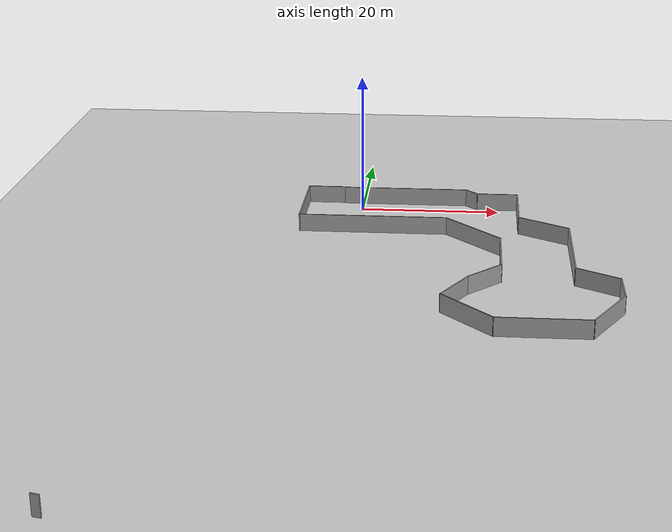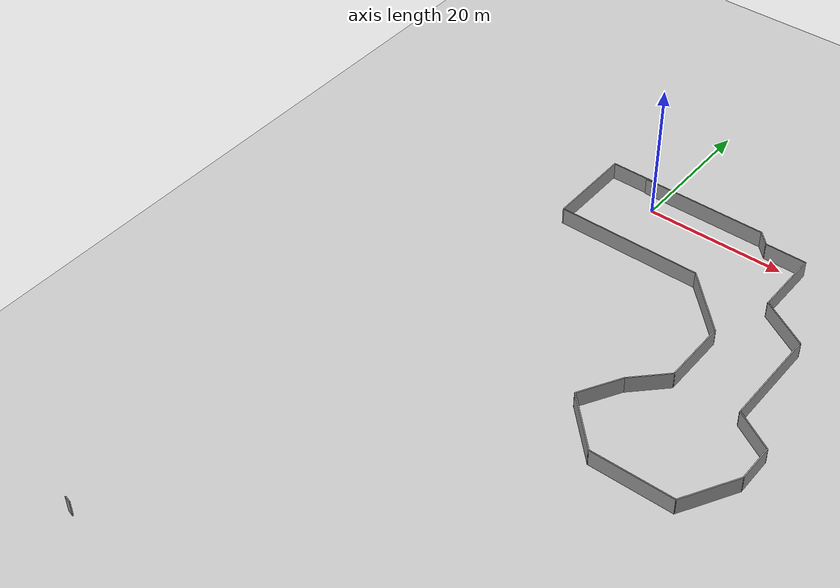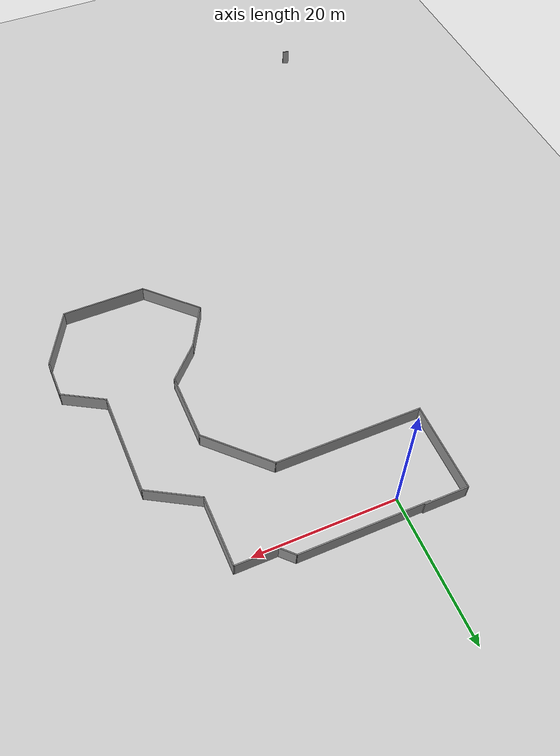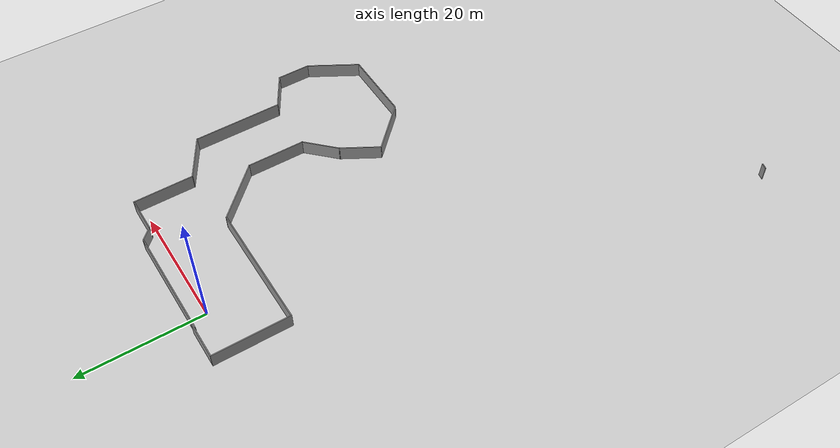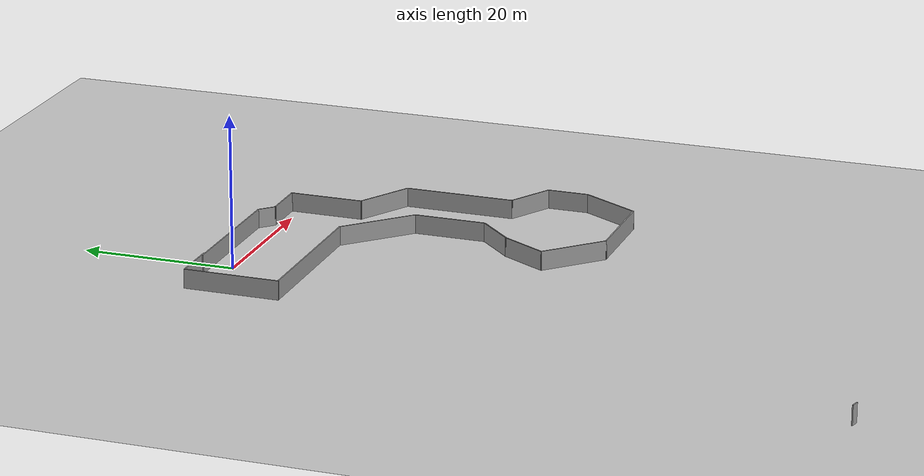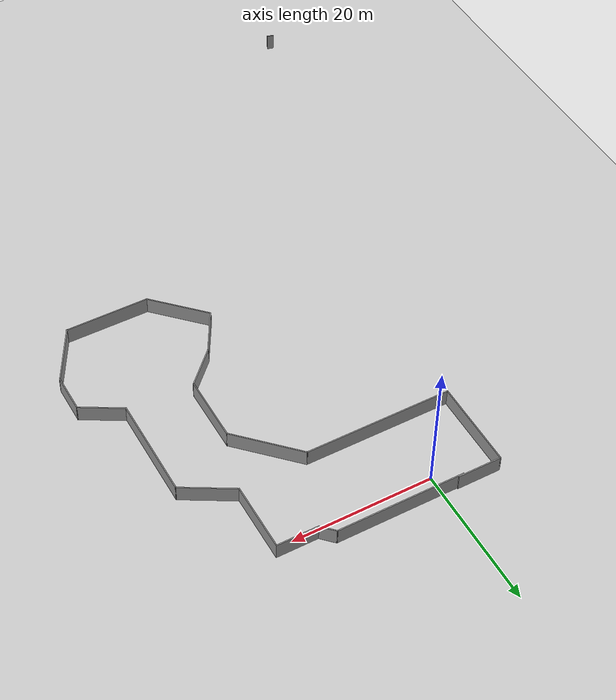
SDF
<sdf version="1.7">
 <world name="default">
  <light name="sun" type="directional">
   <pose>0 0 10 0 -0 0</pose>
   <diffuse>0.8 0.8 0.8 1</diffuse>
   <specular>0.2 0.2 0.2 1</specular>
   <attenuation>
    <range>1000</range>
    <constant>0.9</constant>
    <linear>0.01</linear>
    <quadratic>0.001</quadratic>
   </attenuation>
   <direction>-0.5 0.1 -0.9</direction>
   <spot><inner_angle>0</inner_angle><outer_angle>0</outer_angle><falloff>0</falloff></spot>
  </light>
  <model name="ground_plane">
   <static>1</static>
   <link name="link">
    <collision name="collision">
     <geometry><plane><normal>0 0 1</normal><size>100 100</size></plane></geometry>
     <surface>
      <contact><collide_bitmask>65535</collide_bitmask></contact>
      <friction><ode><mu>100</mu><mu2>50</mu2></ode></friction>
     </surface>
    </collision>
    <visual name="visual">
     <cast_shadows>0</cast_shadows>
     <geometry><plane><normal>0 0 1</normal><size>100 100</size></plane></geometry>
     <material>
      <script><uri>file://media/materials/scripts/gazebo.material</uri><name>Gazebo/Grey</name></script>
     </material>
    </visual>
   </link>
  </model>
  <gravity>0 0 -9.8</gravity>
  <magnetic_field>6e-06 2.3e-05 -4.2e-05</magnetic_field>
  <atmosphere type="adiabatic"/>
  <physics type="ode">
   <max_step_size>0.001</max_step_size>
   <real_time_factor>1</real_time_factor>
   <real_time_update_rate>1000</real_time_update_rate>
  </physics>
  <scene><ambient>0.4 0.4 0.4 1</ambient><background>0.7 0.7 0.7 1</background><shadows>1</shadows></scene>
  <spherical_coordinates>
   <surface_model>EARTH_WGS84</surface_model>
   <latitude_deg>0</latitude_deg>
   <longitude_deg>0</longitude_deg>
   <elevation>0</elevation>
   <heading_deg>0</heading_deg>
  </spherical_coordinates>
  <audio><device>default</device></audio>
  <model name="ppew">
   <pose>5.8394 -40.9398 0 0 -0 0</pose>
   <link name="Wall_0">
    <collision name="Wall_0_Collision">
     <geometry><box><size>1 0.15 2.5</size></box></geometry>
     <pose>0 0 1.25 0 -0 0</pose>
    </collision>
    <visual name="Wall_0_Visual">
     <pose>0 0 1.25 0 -0 0</pose>
     <geometry><box><size>1 0.15 2.5</size></box></geometry>
     <material>
      <script><uri>file://media/materials/scripts/gazebo.material</uri><name>Gazebo/Grey</name></script>
      <ambient>1 1 1 1</ambient>
     </material>
     <meta><layer>0</layer></meta>
    </visual>
    <pose>-28.802 -43.6963 0 0 -0 2.87979</pose>
   </link>
   <link name="Wall_12">
    <collision name="Wall_12_Collision">
     <geometry><box><size>14.5 0.15 2.5</size></box></geometry>
     <pose>0 0 1.25 0 -0 0</pose>
    </collision>
    <visual name="Wall_12_Visual">
     <pose>0 0 1.25 0 -0 0</pose>
     <geometry><box><size>14.5 0.15 2.5</size></box></geometry>
     <material>
      <script><uri>file://media/materials/scripts/gazebo.material</uri><name>Gazebo/Grey</name></script>
      <ambient>1 1 1 1</ambient>
     </material>
     <meta><layer>0</layer></meta>
    </visual>
    <pose>23.7026 21.3118 0 0 -0 -1.5708</pose>
   </link>
   <link name="Wall_13">
    <collision name="Wall_13_Collision">
     <geometry><box><size>6.5 0.15 2.5</size></box></geometry>
     <pose>0 0 1.25 0 -0 0</pose>
    </collision>
    <visual name="Wall_13_Visual">
     <pose>0 0 1.25 0 -0 0</pose>
     <geometry><box><size>6.5 0.15 2.5</size></box></geometry>
     <material>
      <script><uri>file://media/materials/scripts/gazebo.material</uri><name>Gazebo/Grey</name></script>
      <ambient>1 1 1 1</ambient>
     </material>
     <meta><layer>0</layer></meta>
    </visual>
    <pose>26.4523 12.5493 0 0 -0 -0.523599</pose>
   </link>
   <link name="Wall_14">
    <collision name="Wall_14_Collision">
     <geometry><box><size>5.5 0.15 2.5</size></box></geometry>
     <pose>0 0 1.25 0 -0 0</pose>
    </collision>
    <visual name="Wall_14_Visual">
     <pose>0 0 1.25 0 -0 0</pose>
     <geometry><box><size>5.5 0.15 2.5</size></box></geometry>
     <material>
      <script><uri>file://media/materials/scripts/gazebo.material</uri><name>Gazebo/Grey</name></script>
      <ambient>1 1 1 1</ambient>
     </material>
     <meta><layer>0</layer></meta>
    </visual>
    <pose>29.2019 8.28684 0 0 -0 -1.5708</pose>
   </link>
   <link name="Wall_15">
    <collision name="Wall_15_Collision">
     <geometry><box><size>8.75 0.15 2.5</size></box></geometry>
     <pose>0 0 1.25 0 -0 0</pose>
    </collision>
    <visual name="Wall_15_Visual">
     <pose>0 0 1.25 0 -0 0</pose>
     <geometry><box><size>8.75 0.15 2.5</size></box></geometry>
     <material>
      <script><uri>file://media/materials/scripts/gazebo.material</uri><name>Gazebo/Grey</name></script>
      <ambient>1 1 1 1</ambient>
     </material>
     <meta><layer>0</layer></meta>
    </visual>
    <pose>27.0519 1.88793 0 0 -0 -2.0944</pose>
   </link>
   <link name="Wall_16">
    <collision name="Wall_16_Collision">
     <geometry><box><size>12 0.15 2.5</size></box></geometry>
     <pose>0 0 1.25 0 -0 0</pose>
    </collision>
    <visual name="Wall_16_Visual">
     <pose>0 0 1.25 0 -0 0</pose>
     <geometry><box><size>12 0.15 2.5</size></box></geometry>
     <material>
      <script><uri>file://media/materials/scripts/gazebo.material</uri><name>Gazebo/Grey</name></script>
      <ambient>1 1 1 1</ambient>
     </material>
     <meta><layer>0</layer></meta>
    </visual>
    <pose>18.9769 -1.83598 0 0 -0 3.14159</pose>
   </link>
   <link name="Wall_17">
    <collision name="Wall_17_Collision">
     <geometry><box><size>9.25 0.15 2.5</size></box></geometry>
     <pose>0 0 1.25 0 -0 0</pose>
    </collision>
    <visual name="Wall_17_Visual">
     <pose>0 0 1.25 0 -0 0</pose>
     <geometry><box><size>9.25 0.15 2.5</size></box></geometry>
     <material>
      <script><uri>file://media/materials/scripts/gazebo.material</uri><name>Gazebo/Grey</name></script>
      <ambient>1 1 1 1</ambient>
     </material>
     <meta><layer>0</layer></meta>
    </visual>
    <pose>9.83455 1.38136 0 0 -0 2.35619</pose>
   </link>
   <link name="Wall_18">
    <collision name="Wall_18_Collision">
     <geometry><box><size>6.75 0.15 2.5</size></box></geometry>
     <pose>0 0 1.25 0 -0 0</pose>
    </collision>
    <visual name="Wall_18_Visual">
     <pose>0 0 1.25 0 -0 0</pose>
     <geometry><box><size>6.75 0.15 2.5</size></box></geometry>
     <material>
      <script><uri>file://media/materials/scripts/gazebo.material</uri><name>Gazebo/Grey</name></script>
      <ambient>1 1 1 1</ambient>
     </material>
     <meta><layer>0</layer></meta>
    </visual>
    <pose>8.26722 7.45657 0 0 -0 1.0472</pose>
   </link>
   <link name="Wall_19">
    <collision name="Wall_19_Collision">
     <geometry><box><size>6.25 0.15 2.5</size></box></geometry>
     <pose>0 0 1.25 0 -0 0</pose>
    </collision>
    <visual name="Wall_19_Visual">
     <pose>0 0 1.25 0 -0 0</pose>
     <geometry><box><size>6.25 0.15 2.5</size></box></geometry>
     <material>
      <script><uri>file://media/materials/scripts/gazebo.material</uri><name>Gazebo/Grey</name></script>
      <ambient>1 1 1 1</ambient>
     </material>
     <meta><layer>0</layer></meta>
    </visual>
    <pose>12.0739 12.4711 0 0 -0 0.785398</pose>
   </link>
   <link name="Wall_20">
    <collision name="Wall_20_Collision">
     <geometry><box><size>9.5 0.15 2.5</size></box></geometry>
     <pose>0 0 1.25 0 -0 0</pose>
    </collision>
    <visual name="Wall_20_Visual">
     <pose>0 0 1.25 0 -0 0</pose>
     <geometry><box><size>9.5 0.15 2.5</size></box></geometry>
     <material>
      <script><uri>file://media/materials/scripts/gazebo.material</uri><name>Gazebo/Grey</name></script>
      <ambient>1 1 1 1</ambient>
     </material>
     <meta><layer>0</layer></meta>
    </visual>
    <pose>14.2306 19.3028 0 0 -0 1.5708</pose>
   </link>
   <link name="Wall_21">
    <collision name="Wall_21_Collision">
     <geometry><box><size>10.75 0.15 2.5</size></box></geometry>
     <pose>0 0 1.25 0 -0 0</pose>
    </collision>
    <visual name="Wall_21_Visual">
     <pose>0 0 1.25 0 -0 0</pose>
     <geometry><box><size>10.75 0.15 2.5</size></box></geometry>
     <material>
      <script><uri>file://media/materials/scripts/gazebo.material</uri><name>Gazebo/Grey</name></script>
      <ambient>1 1 1 1</ambient>
     </material>
     <meta><layer>0</layer></meta>
    </visual>
    <pose>10.4829 27.7255 0 0 -0 2.35619</pose>
   </link>
   <link name="Wall_22">
    <collision name="Wall_22_Collision">
     <geometry><box><size>21 0.15 2.5</size></box></geometry>
     <pose>0 0 1.25 0 -0 0</pose>
    </collision>
    <visual name="Wall_22_Visual">
     <pose>0 0 1.25 0 -0 0</pose>
     <geometry><box><size>21 0.15 2.5</size></box></geometry>
     <material>
      <script><uri>file://media/materials/scripts/gazebo.material</uri><name>Gazebo/Grey</name></script>
      <ambient>1 1 1 1</ambient>
     </material>
     <meta><layer>0</layer></meta>
    </visual>
    <pose>-3.68976 31.4731 0 0 -0 3.14159</pose>
   </link>
   <link name="Wall_23">
    <collision name="Wall_23_Collision">
     <geometry><box><size>12.5 0.15 2.5</size></box></geometry>
     <pose>0 0 1.25 0 -0 0</pose>
    </collision>
    <visual name="Wall_23_Visual">
     <pose>0 0 1.25 0 -0 0</pose>
     <geometry><box><size>12.5 0.15 2.5</size></box></geometry>
     <material>
      <script><uri>file://media/materials/scripts/gazebo.material</uri><name>Gazebo/Grey</name></script>
      <ambient>1 1 1 1</ambient>
     </material>
     <meta><layer>0</layer></meta>
    </visual>
    <pose>-14.1148 37.6481 0 0 -0 1.5708</pose>
   </link>
   <link name="Wall_24">
    <collision name="Wall_24_Collision">
     <geometry><box><size>6.25 0.15 2.5</size></box></geometry>
     <pose>0 0 1.25 0 -0 0</pose>
    </collision>
    <visual name="Wall_24_Visual">
     <pose>0 0 1.25 0 -0 0</pose>
     <geometry><box><size>6.25 0.15 2.5</size></box></geometry>
     <material>
      <script><uri>file://media/materials/scripts/gazebo.material</uri><name>Gazebo/Grey</name></script>
      <ambient>1 1 1 1</ambient>
     </material>
     <meta><layer>0</layer></meta>
    </visual>
    <pose>-11.0648 43.8231 0 0 -0 0</pose>
   </link>
   <link name="Wall_5">
    <collision name="Wall_5_Collision">
     <geometry><box><size>18.25 0.15 2.5</size></box></geometry>
     <pose>0 0 1.25 0 -0 0</pose>
    </collision>
    <visual name="Wall_5_Visual">
     <pose>0 0 1.25 0 -0 0</pose>
     <geometry><box><size>18.25 0.15 2.5</size></box></geometry>
     <material>
      <script><uri>file://media/materials/scripts/gazebo.material</uri><name>Gazebo/Grey</name></script>
      <ambient>1 1 1 1</ambient>
     </material>
     <meta><layer>0</layer></meta>
    </visual>
    <pose>0.342627 43.6735 0 0 -0 0</pose>
   </link>
   <link name="Wall_6">
    <collision name="Wall_6_Collision">
     <geometry><box><size>2.5 0.15 2.5</size></box></geometry>
     <pose>0 0 1.25 0 -0 0</pose>
    </collision>
    <visual name="Wall_6_Visual">
     <pose>0 0 1.25 0 -0 0</pose>
     <geometry><box><size>2.5 0.15 2.5</size></box></geometry>
     <material>
      <script><uri>file://media/materials/scripts/gazebo.material</uri><name>Gazebo/Grey</name></script>
      <ambient>1 1 1 1</ambient>
     </material>
     <meta><layer>0</layer></meta>
    </visual>
    <pose>10.2235 42.8427 0 0 -0 -0.785398</pose>
   </link>
   <link name="Wall_7">
    <collision name="Wall_7_Collision">
     <geometry><box><size>6 0.15 2.5</size></box></geometry>
     <pose>0 0 1.25 0 -0 0</pose>
    </collision>
    <visual name="Wall_7_Visual">
     <pose>0 0 1.25 0 -0 0</pose>
     <geometry><box><size>6 0.15 2.5</size></box></geometry>
     <material>
      <script><uri>file://media/materials/scripts/gazebo.material</uri><name>Gazebo/Grey</name></script>
      <ambient>1 1 1 1</ambient>
     </material>
     <meta><layer>0</layer></meta>
    </visual>
    <pose>13.9793 42.0118 0 0 -0 0</pose>
   </link>
   <link name="Wall_8">
    <collision name="Wall_8_Collision">
     <geometry><box><size>9.75 0.15 2.5</size></box></geometry>
     <pose>0 0 1.25 0 -0 0</pose>
    </collision>
    <visual name="Wall_8_Visual">
     <pose>0 0 1.25 0 -0 0</pose>
     <geometry><box><size>9.75 0.15 2.5</size></box></geometry>
     <material>
      <script><uri>file://media/materials/scripts/gazebo.material</uri><name>Gazebo/Grey</name></script>
      <ambient>1 1 1 1</ambient>
     </material>
     <meta><layer>0</layer></meta>
    </visual>
    <pose>16.9043 37.2118 0 0 -0 -1.5708</pose>
   </link>
   <link name="Wall_9">
    <collision name="Wall_9_Collision">
     <geometry><box><size>8 0.15 2.5</size></box></geometry>
     <pose>0 0 1.25 0 -0 0</pose>
    </collision>
    <visual name="Wall_9_Visual">
     <pose>0 0 1.25 0 -0 0</pose>
     <geometry><box><size>8 0.15 2.5</size></box></geometry>
     <material>
      <script><uri>file://media/materials/scripts/gazebo.material</uri><name>Gazebo/Grey</name></script>
      <ambient>1 1 1 1</ambient>
     </material>
     <meta><layer>0</layer></meta>
    </visual>
    <pose>20.3035 30.4493 0 0 -0 -0.523599</pose>
   </link>
   <static>1</static>
  </model>
 </world>
</sdf>
